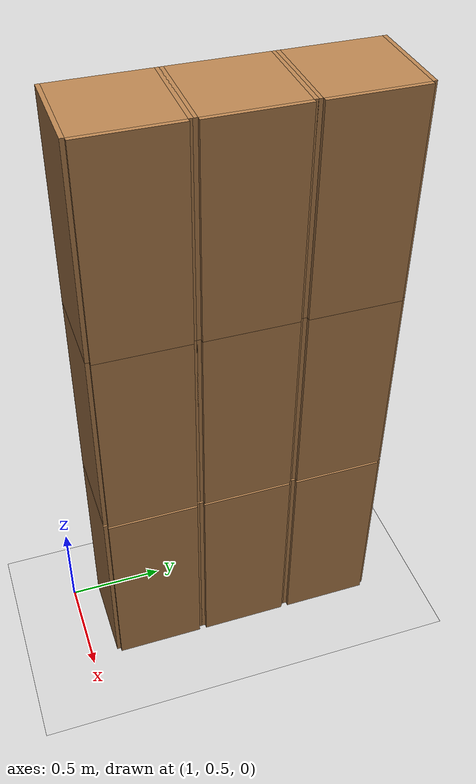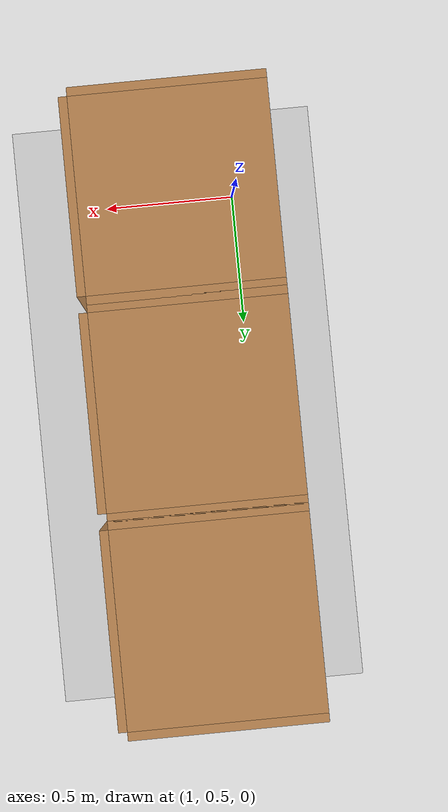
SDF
<sdf version="1.6">
 <world name="default">
  <model name="ground_plane">
   <static>1</static>
   <link name="link">
    <collision name="collision">
     <geometry><plane><normal>0 0 1</normal><size>100 100</size></plane></geometry>
     <surface>
      <contact><collide_bitmask>65535</collide_bitmask></contact>
      <friction><ode><mu>100</mu><mu2>50</mu2></ode></friction>
     </surface>
    </collision>
    <visual name="visual">
     <cast_shadows>0</cast_shadows>
     <geometry><plane><normal>0 0 1</normal><size>100 100</size></plane></geometry>
     <material>
      <script><uri>file://media/materials/scripts/gazebo.material</uri><name>Gazebo/Grey</name></script>
     </material>
    </visual>
   </link>
  </model>
  <model name="Locker18_clone_4_clone_2_clone_1_clone">
   <model name="Locker18">
    <model name="Locker3">
     <model name="cabinet">
      <static>1</static>
      <link name="cabinet_bottom_plate">
       <inertial>
        <pose>0 0 -1 0 -0 0</pose>
        <inertia><ixx>2.05</ixx><ixy>0</ixy><ixz>0</ixz><iyy>2.05</iyy><iyz>0</iyz><izz>2.05</izz></inertia>
        <mass>25</mass>
       </inertial>
       <collision name="cabinet_bottom_plate_geom">
        <pose>0 0 0.01 0 -0 0</pose>
        <geometry><box><size>0.45 0.45 0.02</size></box></geometry>
       </collision>
       <visual name="cabinet_bottom_plate_geom_visual">
        <pose>0 0 0.01 0 -0 0</pose>
        <geometry><box><size>0.45 0.45 0.02</size></box></geometry>
        <material>
         <script><uri>file://media/materials/scripts/gazebo.material</uri><name>Gazebo/Wood</name></script>
        </material>
       </visual>
       <collision name="cabinet_bottom_plate_geom_cabinet_back_plate">
        <pose>0.235 0 0.51 0 -0 0</pose>
        <geometry><box><size>0.02 0.45 1.02</size></box></geometry>
       </collision>
       <visual name="cabinet_bottom_plate_geom_cabinet_back_plate_visual">
        <pose>0.235 0 0.51 0 -0 0</pose>
        <geometry><box><size>0.02 0.45 1.02</size></box></geometry>
        <material>
         <script><uri>file://media/materials/scripts/gazebo.material</uri><name>Gazebo/Wood</name></script>
        </material>
       </visual>
       <collision name="cabinet_bottom_plate_geom_cabinet_left_plate">
        <pose>0 0.235 0.51 0 -0 0</pose>
        <geometry><box><size>0.45 0.02 1.02</size></box></geometry>
       </collision>
       <visual name="cabinet_bottom_plate_geom_cabinet_left_plate_visual">
        <pose>0 0.235 0.51 0 -0 0</pose>
        <geometry><box><size>0.45 0.02 1.02</size></box></geometry>
        <material>
         <script><uri>file://media/materials/scripts/gazebo.material</uri><name>Gazebo/Wood</name></script>
        </material>
       </visual>
       <collision name="cabinet_bottom_plate_geom_cabinet_middle_plate">
        <pose>0 0 0.51 0 -0 0</pose>
        <geometry><box><size>0.45 0.45 0.02</size></box></geometry>
       </collision>
       <visual name="cabinet_bottom_plate_geom_cabinet_middle_plate_visual">
        <pose>0 0 0.51 0 -0 0</pose>
        <geometry><box><size>0.45 0.45 0.02</size></box></geometry>
        <material>
         <script><uri>file://media/materials/scripts/gazebo.material</uri><name>Gazebo/Wood</name></script>
        </material>
       </visual>
       <collision name="cabinet_bottom_plate_geom_cabinet_right_plate">
        <pose>0 -0.235 0.51 0 -0 0</pose>
        <geometry><box><size>0.45 0.02 1.02</size></box></geometry>
       </collision>
       <visual name="cabinet_bottom_plate_geom_cabinet_right_plate_visual">
        <pose>0 -0.235 0.51 0 -0 0</pose>
        <geometry><box><size>0.45 0.02 1.02</size></box></geometry>
        <material>
         <script><uri>file://media/materials/scripts/gazebo.material</uri><name>Gazebo/Wood</name></script>
        </material>
       </visual>
       <collision name="cabinet_bottom_plate_geom_cabinet_top_plate">
        <pose>0 0 1.01 0 -0 0</pose>
        <geometry><box><size>0.45 0.45 0.02</size></box></geometry>
       </collision>
       <visual name="cabinet_bottom_plate_geom_cabinet_top_plate_visual">
        <pose>0 0 1.01 0 -0 0</pose>
        <geometry><box><size>0.45 0.45 0.02</size></box></geometry>
        <material>
         <script><uri>file://media/materials/scripts/gazebo.material</uri><name>Gazebo/Wood</name></script>
        </material>
       </visual>
      </link>
      <pose>-0.676968 1.45758 0 0 -0 0</pose>
     </model>
     <model name="cabinet_clone">
      <static>1</static>
      <link name="cabinet_bottom_plate">
       <inertial>
        <pose>0 0 -1 0 -0 0</pose>
        <inertia><ixx>2.05</ixx><ixy>0</ixy><ixz>0</ixz><iyy>2.05</iyy><iyz>0</iyz><izz>2.05</izz></inertia>
        <mass>25</mass>
       </inertial>
       <collision name="cabinet_bottom_plate_geom">
        <pose>0 0 0.01 0 -0 0</pose>
        <geometry><box><size>0.45 0.45 0.02</size></box></geometry>
       </collision>
       <visual name="cabinet_bottom_plate_geom_visual">
        <pose>0 0 0.01 0 -0 0</pose>
        <geometry><box><size>0.45 0.45 0.02</size></box></geometry>
        <material>
         <script><uri>file://media/materials/scripts/gazebo.material</uri><name>Gazebo/Wood</name></script>
        </material>
       </visual>
       <collision name="cabinet_bottom_plate_geom_cabinet_back_plate">
        <pose>0.235 0 0.51 0 -0 0</pose>
        <geometry><box><size>0.02 0.45 1.02</size></box></geometry>
       </collision>
       <visual name="cabinet_bottom_plate_geom_cabinet_back_plate_visual">
        <pose>0.235 0 0.51 0 -0 0</pose>
        <geometry><box><size>0.02 0.45 1.02</size></box></geometry>
        <material>
         <script><uri>file://media/materials/scripts/gazebo.material</uri><name>Gazebo/Wood</name></script>
        </material>
       </visual>
       <collision name="cabinet_bottom_plate_geom_cabinet_left_plate">
        <pose>0 0.235 0.51 0 -0 0</pose>
        <geometry><box><size>0.45 0.02 1.02</size></box></geometry>
       </collision>
       <visual name="cabinet_bottom_plate_geom_cabinet_left_plate_visual">
        <pose>0 0.235 0.51 0 -0 0</pose>
        <geometry><box><size>0.45 0.02 1.02</size></box></geometry>
        <material>
         <script><uri>file://media/materials/scripts/gazebo.material</uri><name>Gazebo/Wood</name></script>
        </material>
       </visual>
       <collision name="cabinet_bottom_plate_geom_cabinet_middle_plate">
        <pose>0 0 0.51 0 -0 0</pose>
        <geometry><box><size>0.45 0.45 0.02</size></box></geometry>
       </collision>
       <visual name="cabinet_bottom_plate_geom_cabinet_middle_plate_visual">
        <pose>0 0 0.51 0 -0 0</pose>
        <geometry><box><size>0.45 0.45 0.02</size></box></geometry>
        <material>
         <script><uri>file://media/materials/scripts/gazebo.material</uri><name>Gazebo/Wood</name></script>
        </material>
       </visual>
       <collision name="cabinet_bottom_plate_geom_cabinet_right_plate">
        <pose>0 -0.235 0.51 0 -0 0</pose>
        <geometry><box><size>0.45 0.02 1.02</size></box></geometry>
       </collision>
       <visual name="cabinet_bottom_plate_geom_cabinet_right_plate_visual">
        <pose>0 -0.235 0.51 0 -0 0</pose>
        <geometry><box><size>0.45 0.02 1.02</size></box></geometry>
        <material>
         <script><uri>file://media/materials/scripts/gazebo.material</uri><name>Gazebo/Wood</name></script>
        </material>
       </visual>
       <collision name="cabinet_bottom_plate_geom_cabinet_top_plate">
        <pose>0 0 1.01 0 -0 0</pose>
        <geometry><box><size>0.45 0.45 0.02</size></box></geometry>
       </collision>
       <visual name="cabinet_bottom_plate_geom_cabinet_top_plate_visual">
        <pose>0 0 1.01 0 -0 0</pose>
        <geometry><box><size>0.45 0.45 0.02</size></box></geometry>
        <material>
         <script><uri>file://media/materials/scripts/gazebo.material</uri><name>Gazebo/Wood</name></script>
        </material>
       </visual>
      </link>
      <pose>-0.676968 0.970971 0 0 -0 0</pose>
     </model>
     <model name="cabinet_clone_0">
      <static>1</static>
      <link name="cabinet_bottom_plate">
       <inertial>
        <pose>0 0 -1 0 -0 0</pose>
        <inertia><ixx>2.05</ixx><ixy>0</ixy><ixz>0</ixz><iyy>2.05</iyy><iyz>0</iyz><izz>2.05</izz></inertia>
        <mass>25</mass>
       </inertial>
       <collision name="cabinet_bottom_plate_geom">
        <pose>0 0 0.01 0 -0 0</pose>
        <geometry><box><size>0.45 0.45 0.02</size></box></geometry>
       </collision>
       <visual name="cabinet_bottom_plate_geom_visual">
        <pose>0 0 0.01 0 -0 0</pose>
        <geometry><box><size>0.45 0.45 0.02</size></box></geometry>
        <material>
         <script><uri>file://media/materials/scripts/gazebo.material</uri><name>Gazebo/Wood</name></script>
        </material>
       </visual>
       <collision name="cabinet_bottom_plate_geom_cabinet_back_plate">
        <pose>0.235 0 0.51 0 -0 0</pose>
        <geometry><box><size>0.02 0.45 1.02</size></box></geometry>
       </collision>
       <visual name="cabinet_bottom_plate_geom_cabinet_back_plate_visual">
        <pose>0.235 0 0.51 0 -0 0</pose>
        <geometry><box><size>0.02 0.45 1.02</size></box></geometry>
        <material>
         <script><uri>file://media/materials/scripts/gazebo.material</uri><name>Gazebo/Wood</name></script>
        </material>
       </visual>
       <collision name="cabinet_bottom_plate_geom_cabinet_left_plate">
        <pose>0 0.235 0.51 0 -0 0</pose>
        <geometry><box><size>0.45 0.02 1.02</size></box></geometry>
       </collision>
       <visual name="cabinet_bottom_plate_geom_cabinet_left_plate_visual">
        <pose>0 0.235 0.51 0 -0 0</pose>
        <geometry><box><size>0.45 0.02 1.02</size></box></geometry>
        <material>
         <script><uri>file://media/materials/scripts/gazebo.material</uri><name>Gazebo/Wood</name></script>
        </material>
       </visual>
       <collision name="cabinet_bottom_plate_geom_cabinet_middle_plate">
        <pose>0 0 0.51 0 -0 0</pose>
        <geometry><box><size>0.45 0.45 0.02</size></box></geometry>
       </collision>
       <visual name="cabinet_bottom_plate_geom_cabinet_middle_plate_visual">
        <pose>0 0 0.51 0 -0 0</pose>
        <geometry><box><size>0.45 0.45 0.02</size></box></geometry>
        <material>
         <script><uri>file://media/materials/scripts/gazebo.material</uri><name>Gazebo/Wood</name></script>
        </material>
       </visual>
       <collision name="cabinet_bottom_plate_geom_cabinet_right_plate">
        <pose>0 -0.235 0.51 0 -0 0</pose>
        <geometry><box><size>0.45 0.02 1.02</size></box></geometry>
       </collision>
       <visual name="cabinet_bottom_plate_geom_cabinet_right_plate_visual">
        <pose>0 -0.235 0.51 0 -0 0</pose>
        <geometry><box><size>0.45 0.02 1.02</size></box></geometry>
        <material>
         <script><uri>file://media/materials/scripts/gazebo.material</uri><name>Gazebo/Wood</name></script>
        </material>
       </visual>
       <collision name="cabinet_bottom_plate_geom_cabinet_top_plate">
        <pose>0 0 1.01 0 -0 0</pose>
        <geometry><box><size>0.45 0.45 0.02</size></box></geometry>
       </collision>
       <visual name="cabinet_bottom_plate_geom_cabinet_top_plate_visual">
        <pose>0 0 1.01 0 -0 0</pose>
        <geometry><box><size>0.45 0.45 0.02</size></box></geometry>
        <material>
         <script><uri>file://media/materials/scripts/gazebo.material</uri><name>Gazebo/Wood</name></script>
        </material>
       </visual>
      </link>
      <pose>-0.676968 0.48391 0 0 -0 0</pose>
     </model>
     <static>0</static>
     <pose>0 3e-06 -1.02763 0 -0 0</pose>
    </model>
    <model name="Locker3_clone">
     <model name="cabinet">
      <static>1</static>
      <link name="cabinet_bottom_plate">
       <inertial>
        <pose>0 0 -1 0 -0 0</pose>
        <inertia><ixx>2.05</ixx><ixy>0</ixy><ixz>0</ixz><iyy>2.05</iyy><iyz>0</iyz><izz>2.05</izz></inertia>
        <mass>25</mass>
       </inertial>
       <collision name="cabinet_bottom_plate_geom">
        <pose>0 0 0.01 0 -0 0</pose>
        <geometry><box><size>0.45 0.45 0.02</size></box></geometry>
       </collision>
       <visual name="cabinet_bottom_plate_geom_visual">
        <pose>0 0 0.01 0 -0 0</pose>
        <geometry><box><size>0.45 0.45 0.02</size></box></geometry>
        <material>
         <script><uri>file://media/materials/scripts/gazebo.material</uri><name>Gazebo/Wood</name></script>
        </material>
       </visual>
       <collision name="cabinet_bottom_plate_geom_cabinet_back_plate">
        <pose>0.235 0 0.51 0 -0 0</pose>
        <geometry><box><size>0.02 0.45 1.02</size></box></geometry>
       </collision>
       <visual name="cabinet_bottom_plate_geom_cabinet_back_plate_visual">
        <pose>0.235 0 0.51 0 -0 0</pose>
        <geometry><box><size>0.02 0.45 1.02</size></box></geometry>
        <material>
         <script><uri>file://media/materials/scripts/gazebo.material</uri><name>Gazebo/Wood</name></script>
        </material>
       </visual>
       <collision name="cabinet_bottom_plate_geom_cabinet_left_plate">
        <pose>0 0.235 0.51 0 -0 0</pose>
        <geometry><box><size>0.45 0.02 1.02</size></box></geometry>
       </collision>
       <visual name="cabinet_bottom_plate_geom_cabinet_left_plate_visual">
        <pose>0 0.235 0.51 0 -0 0</pose>
        <geometry><box><size>0.45 0.02 1.02</size></box></geometry>
        <material>
         <script><uri>file://media/materials/scripts/gazebo.material</uri><name>Gazebo/Wood</name></script>
        </material>
       </visual>
       <collision name="cabinet_bottom_plate_geom_cabinet_middle_plate">
        <pose>0 0 0.51 0 -0 0</pose>
        <geometry><box><size>0.45 0.45 0.02</size></box></geometry>
       </collision>
       <visual name="cabinet_bottom_plate_geom_cabinet_middle_plate_visual">
        <pose>0 0 0.51 0 -0 0</pose>
        <geometry><box><size>0.45 0.45 0.02</size></box></geometry>
        <material>
         <script><uri>file://media/materials/scripts/gazebo.material</uri><name>Gazebo/Wood</name></script>
        </material>
       </visual>
       <collision name="cabinet_bottom_plate_geom_cabinet_right_plate">
        <pose>0 -0.235 0.51 0 -0 0</pose>
        <geometry><box><size>0.45 0.02 1.02</size></box></geometry>
       </collision>
       <visual name="cabinet_bottom_plate_geom_cabinet_right_plate_visual">
        <pose>0 -0.235 0.51 0 -0 0</pose>
        <geometry><box><size>0.45 0.02 1.02</size></box></geometry>
        <material>
         <script><uri>file://media/materials/scripts/gazebo.material</uri><name>Gazebo/Wood</name></script>
        </material>
       </visual>
       <collision name="cabinet_bottom_plate_geom_cabinet_top_plate">
        <pose>0 0 1.01 0 -0 0</pose>
        <geometry><box><size>0.45 0.45 0.02</size></box></geometry>
       </collision>
       <visual name="cabinet_bottom_plate_geom_cabinet_top_plate_visual">
        <pose>0 0 1.01 0 -0 0</pose>
        <geometry><box><size>0.45 0.45 0.02</size></box></geometry>
        <material>
         <script><uri>file://media/materials/scripts/gazebo.material</uri><name>Gazebo/Wood</name></script>
        </material>
       </visual>
      </link>
      <pose>-0.676968 1.45758 0 0 -0 0</pose>
     </model>
     <model name="cabinet_clone">
      <static>1</static>
      <link name="cabinet_bottom_plate">
       <inertial>
        <pose>0 0 -1 0 -0 0</pose>
        <inertia><ixx>2.05</ixx><ixy>0</ixy><ixz>0</ixz><iyy>2.05</iyy><iyz>0</iyz><izz>2.05</izz></inertia>
        <mass>25</mass>
       </inertial>
       <collision name="cabinet_bottom_plate_geom">
        <pose>0 0 0.01 0 -0 0</pose>
        <geometry><box><size>0.45 0.45 0.02</size></box></geometry>
       </collision>
       <visual name="cabinet_bottom_plate_geom_visual">
        <pose>0 0 0.01 0 -0 0</pose>
        <geometry><box><size>0.45 0.45 0.02</size></box></geometry>
        <material>
         <script><uri>file://media/materials/scripts/gazebo.material</uri><name>Gazebo/Wood</name></script>
        </material>
       </visual>
       <collision name="cabinet_bottom_plate_geom_cabinet_back_plate">
        <pose>0.235 0 0.51 0 -0 0</pose>
        <geometry><box><size>0.02 0.45 1.02</size></box></geometry>
       </collision>
       <visual name="cabinet_bottom_plate_geom_cabinet_back_plate_visual">
        <pose>0.235 0 0.51 0 -0 0</pose>
        <geometry><box><size>0.02 0.45 1.02</size></box></geometry>
        <material>
         <script><uri>file://media/materials/scripts/gazebo.material</uri><name>Gazebo/Wood</name></script>
        </material>
       </visual>
       <collision name="cabinet_bottom_plate_geom_cabinet_left_plate">
        <pose>0 0.235 0.51 0 -0 0</pose>
        <geometry><box><size>0.45 0.02 1.02</size></box></geometry>
       </collision>
       <visual name="cabinet_bottom_plate_geom_cabinet_left_plate_visual">
        <pose>0 0.235 0.51 0 -0 0</pose>
        <geometry><box><size>0.45 0.02 1.02</size></box></geometry>
        <material>
         <script><uri>file://media/materials/scripts/gazebo.material</uri><name>Gazebo/Wood</name></script>
        </material>
       </visual>
       <collision name="cabinet_bottom_plate_geom_cabinet_middle_plate">
        <pose>0 0 0.51 0 -0 0</pose>
        <geometry><box><size>0.45 0.45 0.02</size></box></geometry>
       </collision>
       <visual name="cabinet_bottom_plate_geom_cabinet_middle_plate_visual">
        <pose>0 0 0.51 0 -0 0</pose>
        <geometry><box><size>0.45 0.45 0.02</size></box></geometry>
        <material>
         <script><uri>file://media/materials/scripts/gazebo.material</uri><name>Gazebo/Wood</name></script>
        </material>
       </visual>
       <collision name="cabinet_bottom_plate_geom_cabinet_right_plate">
        <pose>0 -0.235 0.51 0 -0 0</pose>
        <geometry><box><size>0.45 0.02 1.02</size></box></geometry>
       </collision>
       <visual name="cabinet_bottom_plate_geom_cabinet_right_plate_visual">
        <pose>0 -0.235 0.51 0 -0 0</pose>
        <geometry><box><size>0.45 0.02 1.02</size></box></geometry>
        <material>
         <script><uri>file://media/materials/scripts/gazebo.material</uri><name>Gazebo/Wood</name></script>
        </material>
       </visual>
       <collision name="cabinet_bottom_plate_geom_cabinet_top_plate">
        <pose>0 0 1.01 0 -0 0</pose>
        <geometry><box><size>0.45 0.45 0.02</size></box></geometry>
       </collision>
       <visual name="cabinet_bottom_plate_geom_cabinet_top_plate_visual">
        <pose>0 0 1.01 0 -0 0</pose>
        <geometry><box><size>0.45 0.45 0.02</size></box></geometry>
        <material>
         <script><uri>file://media/materials/scripts/gazebo.material</uri><name>Gazebo/Wood</name></script>
        </material>
       </visual>
      </link>
      <pose>-0.676968 0.970971 0 0 -0 0</pose>
     </model>
     <model name="cabinet_clone_0">
      <static>1</static>
      <link name="cabinet_bottom_plate">
       <inertial>
        <pose>0 0 -1 0 -0 0</pose>
        <inertia><ixx>2.05</ixx><ixy>0</ixy><ixz>0</ixz><iyy>2.05</iyy><iyz>0</iyz><izz>2.05</izz></inertia>
        <mass>25</mass>
       </inertial>
       <collision name="cabinet_bottom_plate_geom">
        <pose>0 0 0.01 0 -0 0</pose>
        <geometry><box><size>0.45 0.45 0.02</size></box></geometry>
       </collision>
       <visual name="cabinet_bottom_plate_geom_visual">
        <pose>0 0 0.01 0 -0 0</pose>
        <geometry><box><size>0.45 0.45 0.02</size></box></geometry>
        <material>
         <script><uri>file://media/materials/scripts/gazebo.material</uri><name>Gazebo/Wood</name></script>
        </material>
       </visual>
       <collision name="cabinet_bottom_plate_geom_cabinet_back_plate">
        <pose>0.235 0 0.51 0 -0 0</pose>
        <geometry><box><size>0.02 0.45 1.02</size></box></geometry>
       </collision>
       <visual name="cabinet_bottom_plate_geom_cabinet_back_plate_visual">
        <pose>0.235 0 0.51 0 -0 0</pose>
        <geometry><box><size>0.02 0.45 1.02</size></box></geometry>
        <material>
         <script><uri>file://media/materials/scripts/gazebo.material</uri><name>Gazebo/Wood</name></script>
        </material>
       </visual>
       <collision name="cabinet_bottom_plate_geom_cabinet_left_plate">
        <pose>0 0.235 0.51 0 -0 0</pose>
        <geometry><box><size>0.45 0.02 1.02</size></box></geometry>
       </collision>
       <visual name="cabinet_bottom_plate_geom_cabinet_left_plate_visual">
        <pose>0 0.235 0.51 0 -0 0</pose>
        <geometry><box><size>0.45 0.02 1.02</size></box></geometry>
        <material>
         <script><uri>file://media/materials/scripts/gazebo.material</uri><name>Gazebo/Wood</name></script>
        </material>
       </visual>
       <collision name="cabinet_bottom_plate_geom_cabinet_middle_plate">
        <pose>0 0 0.51 0 -0 0</pose>
        <geometry><box><size>0.45 0.45 0.02</size></box></geometry>
       </collision>
       <visual name="cabinet_bottom_plate_geom_cabinet_middle_plate_visual">
        <pose>0 0 0.51 0 -0 0</pose>
        <geometry><box><size>0.45 0.45 0.02</size></box></geometry>
        <material>
         <script><uri>file://media/materials/scripts/gazebo.material</uri><name>Gazebo/Wood</name></script>
        </material>
       </visual>
       <collision name="cabinet_bottom_plate_geom_cabinet_right_plate">
        <pose>0 -0.235 0.51 0 -0 0</pose>
        <geometry><box><size>0.45 0.02 1.02</size></box></geometry>
       </collision>
       <visual name="cabinet_bottom_plate_geom_cabinet_right_plate_visual">
        <pose>0 -0.235 0.51 0 -0 0</pose>
        <geometry><box><size>0.45 0.02 1.02</size></box></geometry>
        <material>
         <script><uri>file://media/materials/scripts/gazebo.material</uri><name>Gazebo/Wood</name></script>
        </material>
       </visual>
       <collision name="cabinet_bottom_plate_geom_cabinet_top_plate">
        <pose>0 0 1.01 0 -0 0</pose>
        <geometry><box><size>0.45 0.45 0.02</size></box></geometry>
       </collision>
       <visual name="cabinet_bottom_plate_geom_cabinet_top_plate_visual">
        <pose>0 0 1.01 0 -0 0</pose>
        <geometry><box><size>0.45 0.45 0.02</size></box></geometry>
        <material>
         <script><uri>file://media/materials/scripts/gazebo.material</uri><name>Gazebo/Wood</name></script>
        </material>
       </visual>
      </link>
      <pose>-0.676968 0.48391 0 0 -0 0</pose>
     </model>
     <static>0</static>
     <pose>0 3e-06 0.003717 0 -0 0</pose>
    </model>
    <model name="Locker3_clone_clone">
     <model name="cabinet">
      <static>1</static>
      <link name="cabinet_bottom_plate">
       <inertial>
        <pose>0 0 -1 0 -0 0</pose>
        <inertia><ixx>2.05</ixx><ixy>0</ixy><ixz>0</ixz><iyy>2.05</iyy><iyz>0</iyz><izz>2.05</izz></inertia>
        <mass>25</mass>
       </inertial>
       <collision name="cabinet_bottom_plate_geom">
        <pose>0 0 0.01 0 -0 0</pose>
        <geometry><box><size>0.45 0.45 0.02</size></box></geometry>
       </collision>
       <visual name="cabinet_bottom_plate_geom_visual">
        <pose>0 0 0.01 0 -0 0</pose>
        <geometry><box><size>0.45 0.45 0.02</size></box></geometry>
        <material>
         <script><uri>file://media/materials/scripts/gazebo.material</uri><name>Gazebo/Wood</name></script>
        </material>
       </visual>
       <collision name="cabinet_bottom_plate_geom_cabinet_back_plate">
        <pose>0.235 0 0.51 0 -0 0</pose>
        <geometry><box><size>0.02 0.45 1.02</size></box></geometry>
       </collision>
       <visual name="cabinet_bottom_plate_geom_cabinet_back_plate_visual">
        <pose>0.235 0 0.51 0 -0 0</pose>
        <geometry><box><size>0.02 0.45 1.02</size></box></geometry>
        <material>
         <script><uri>file://media/materials/scripts/gazebo.material</uri><name>Gazebo/Wood</name></script>
        </material>
       </visual>
       <collision name="cabinet_bottom_plate_geom_cabinet_left_plate">
        <pose>0 0.235 0.51 0 -0 0</pose>
        <geometry><box><size>0.45 0.02 1.02</size></box></geometry>
       </collision>
       <visual name="cabinet_bottom_plate_geom_cabinet_left_plate_visual">
        <pose>0 0.235 0.51 0 -0 0</pose>
        <geometry><box><size>0.45 0.02 1.02</size></box></geometry>
        <material>
         <script><uri>file://media/materials/scripts/gazebo.material</uri><name>Gazebo/Wood</name></script>
        </material>
       </visual>
       <collision name="cabinet_bottom_plate_geom_cabinet_middle_plate">
        <pose>0 0 0.51 0 -0 0</pose>
        <geometry><box><size>0.45 0.45 0.02</size></box></geometry>
       </collision>
       <visual name="cabinet_bottom_plate_geom_cabinet_middle_plate_visual">
        <pose>0 0 0.51 0 -0 0</pose>
        <geometry><box><size>0.45 0.45 0.02</size></box></geometry>
        <material>
         <script><uri>file://media/materials/scripts/gazebo.material</uri><name>Gazebo/Wood</name></script>
        </material>
       </visual>
       <collision name="cabinet_bottom_plate_geom_cabinet_right_plate">
        <pose>0 -0.235 0.51 0 -0 0</pose>
        <geometry><box><size>0.45 0.02 1.02</size></box></geometry>
       </collision>
       <visual name="cabinet_bottom_plate_geom_cabinet_right_plate_visual">
        <pose>0 -0.235 0.51 0 -0 0</pose>
        <geometry><box><size>0.45 0.02 1.02</size></box></geometry>
        <material>
         <script><uri>file://media/materials/scripts/gazebo.material</uri><name>Gazebo/Wood</name></script>
        </material>
       </visual>
       <collision name="cabinet_bottom_plate_geom_cabinet_top_plate">
        <pose>0 0 1.01 0 -0 0</pose>
        <geometry><box><size>0.45 0.45 0.02</size></box></geometry>
       </collision>
       <visual name="cabinet_bottom_plate_geom_cabinet_top_plate_visual">
        <pose>0 0 1.01 0 -0 0</pose>
        <geometry><box><size>0.45 0.45 0.02</size></box></geometry>
        <material>
         <script><uri>file://media/materials/scripts/gazebo.material</uri><name>Gazebo/Wood</name></script>
        </material>
       </visual>
      </link>
      <pose>-0.676968 1.45758 0 0 -0 0</pose>
     </model>
     <model name="cabinet_clone">
      <static>1</static>
      <link name="cabinet_bottom_plate">
       <inertial>
        <pose>0 0 -1 0 -0 0</pose>
        <inertia><ixx>2.05</ixx><ixy>0</ixy><ixz>0</ixz><iyy>2.05</iyy><iyz>0</iyz><izz>2.05</izz></inertia>
        <mass>25</mass>
       </inertial>
       <collision name="cabinet_bottom_plate_geom">
        <pose>0 0 0.01 0 -0 0</pose>
        <geometry><box><size>0.45 0.45 0.02</size></box></geometry>
       </collision>
       <visual name="cabinet_bottom_plate_geom_visual">
        <pose>0 0 0.01 0 -0 0</pose>
        <geometry><box><size>0.45 0.45 0.02</size></box></geometry>
        <material>
         <script><uri>file://media/materials/scripts/gazebo.material</uri><name>Gazebo/Wood</name></script>
        </material>
       </visual>
       <collision name="cabinet_bottom_plate_geom_cabinet_back_plate">
        <pose>0.235 0 0.51 0 -0 0</pose>
        <geometry><box><size>0.02 0.45 1.02</size></box></geometry>
       </collision>
       <visual name="cabinet_bottom_plate_geom_cabinet_back_plate_visual">
        <pose>0.235 0 0.51 0 -0 0</pose>
        <geometry><box><size>0.02 0.45 1.02</size></box></geometry>
        <material>
         <script><uri>file://media/materials/scripts/gazebo.material</uri><name>Gazebo/Wood</name></script>
        </material>
       </visual>
       <collision name="cabinet_bottom_plate_geom_cabinet_left_plate">
        <pose>0 0.235 0.51 0 -0 0</pose>
        <geometry><box><size>0.45 0.02 1.02</size></box></geometry>
       </collision>
       <visual name="cabinet_bottom_plate_geom_cabinet_left_plate_visual">
        <pose>0 0.235 0.51 0 -0 0</pose>
        <geometry><box><size>0.45 0.02 1.02</size></box></geometry>
        <material>
         <script><uri>file://media/materials/scripts/gazebo.material</uri><name>Gazebo/Wood</name></script>
        </material>
       </visual>
       <collision name="cabinet_bottom_plate_geom_cabinet_middle_plate">
        <pose>0 0 0.51 0 -0 0</pose>
        <geometry><box><size>0.45 0.45 0.02</size></box></geometry>
       </collision>
       <visual name="cabinet_bottom_plate_geom_cabinet_middle_plate_visual">
        <pose>0 0 0.51 0 -0 0</pose>
        <geometry><box><size>0.45 0.45 0.02</size></box></geometry>
        <material>
         <script><uri>file://media/materials/scripts/gazebo.material</uri><name>Gazebo/Wood</name></script>
        </material>
       </visual>
       <collision name="cabinet_bottom_plate_geom_cabinet_right_plate">
        <pose>0 -0.235 0.51 0 -0 0</pose>
        <geometry><box><size>0.45 0.02 1.02</size></box></geometry>
       </collision>
       <visual name="cabinet_bottom_plate_geom_cabinet_right_plate_visual">
        <pose>0 -0.235 0.51 0 -0 0</pose>
        <geometry><box><size>0.45 0.02 1.02</size></box></geometry>
        <material>
         <script><uri>file://media/materials/scripts/gazebo.material</uri><name>Gazebo/Wood</name></script>
        </material>
       </visual>
       <collision name="cabinet_bottom_plate_geom_cabinet_top_plate">
        <pose>0 0 1.01 0 -0 0</pose>
        <geometry><box><size>0.45 0.45 0.02</size></box></geometry>
       </collision>
       <visual name="cabinet_bottom_plate_geom_cabinet_top_plate_visual">
        <pose>0 0 1.01 0 -0 0</pose>
        <geometry><box><size>0.45 0.45 0.02</size></box></geometry>
        <material>
         <script><uri>file://media/materials/scripts/gazebo.material</uri><name>Gazebo/Wood</name></script>
        </material>
       </visual>
      </link>
      <pose>-0.676968 0.970971 0 0 -0 0</pose>
     </model>
     <model name="cabinet_clone_0">
      <static>1</static>
      <link name="cabinet_bottom_plate">
       <inertial>
        <pose>0 0 -1 0 -0 0</pose>
        <inertia><ixx>2.05</ixx><ixy>0</ixy><ixz>0</ixz><iyy>2.05</iyy><iyz>0</iyz><izz>2.05</izz></inertia>
        <mass>25</mass>
       </inertial>
       <collision name="cabinet_bottom_plate_geom">
        <pose>0 0 0.01 0 -0 0</pose>
        <geometry><box><size>0.45 0.45 0.02</size></box></geometry>
       </collision>
       <visual name="cabinet_bottom_plate_geom_visual">
        <pose>0 0 0.01 0 -0 0</pose>
        <geometry><box><size>0.45 0.45 0.02</size></box></geometry>
        <material>
         <script><uri>file://media/materials/scripts/gazebo.material</uri><name>Gazebo/Wood</name></script>
        </material>
       </visual>
       <collision name="cabinet_bottom_plate_geom_cabinet_back_plate">
        <pose>0.235 0 0.51 0 -0 0</pose>
        <geometry><box><size>0.02 0.45 1.02</size></box></geometry>
       </collision>
       <visual name="cabinet_bottom_plate_geom_cabinet_back_plate_visual">
        <pose>0.235 0 0.51 0 -0 0</pose>
        <geometry><box><size>0.02 0.45 1.02</size></box></geometry>
        <material>
         <script><uri>file://media/materials/scripts/gazebo.material</uri><name>Gazebo/Wood</name></script>
        </material>
       </visual>
       <collision name="cabinet_bottom_plate_geom_cabinet_left_plate">
        <pose>0 0.235 0.51 0 -0 0</pose>
        <geometry><box><size>0.45 0.02 1.02</size></box></geometry>
       </collision>
       <visual name="cabinet_bottom_plate_geom_cabinet_left_plate_visual">
        <pose>0 0.235 0.51 0 -0 0</pose>
        <geometry><box><size>0.45 0.02 1.02</size></box></geometry>
        <material>
         <script><uri>file://media/materials/scripts/gazebo.material</uri><name>Gazebo/Wood</name></script>
        </material>
       </visual>
       <collision name="cabinet_bottom_plate_geom_cabinet_middle_plate">
        <pose>0 0 0.51 0 -0 0</pose>
        <geometry><box><size>0.45 0.45 0.02</size></box></geometry>
       </collision>
       <visual name="cabinet_bottom_plate_geom_cabinet_middle_plate_visual">
        <pose>0 0 0.51 0 -0 0</pose>
        <geometry><box><size>0.45 0.45 0.02</size></box></geometry>
        <material>
         <script><uri>file://media/materials/scripts/gazebo.material</uri><name>Gazebo/Wood</name></script>
        </material>
       </visual>
       <collision name="cabinet_bottom_plate_geom_cabinet_right_plate">
        <pose>0 -0.235 0.51 0 -0 0</pose>
        <geometry><box><size>0.45 0.02 1.02</size></box></geometry>
       </collision>
       <visual name="cabinet_bottom_plate_geom_cabinet_right_plate_visual">
        <pose>0 -0.235 0.51 0 -0 0</pose>
        <geometry><box><size>0.45 0.02 1.02</size></box></geometry>
        <material>
         <script><uri>file://media/materials/scripts/gazebo.material</uri><name>Gazebo/Wood</name></script>
        </material>
       </visual>
       <collision name="cabinet_bottom_plate_geom_cabinet_top_plate">
        <pose>0 0 1.01 0 -0 0</pose>
        <geometry><box><size>0.45 0.45 0.02</size></box></geometry>
       </collision>
       <visual name="cabinet_bottom_plate_geom_cabinet_top_plate_visual">
        <pose>0 0 1.01 0 -0 0</pose>
        <geometry><box><size>0.45 0.45 0.02</size></box></geometry>
        <material>
         <script><uri>file://media/materials/scripts/gazebo.material</uri><name>Gazebo/Wood</name></script>
        </material>
       </visual>
      </link>
      <pose>-0.676968 0.48391 0 0 -0 0</pose>
     </model>
     <static>0</static>
     <pose>0 3e-06 1.02391 0 -0 0</pose>
    </model>
    <static>0</static>
    <pose>-0 4e-06 4e-06 0 -0 0</pose>
   </model>
   <static>0</static>
   <pose>1.94577 0.397643 1.08672 0 -0 0</pose>
  </model>
 </world>
</sdf>
